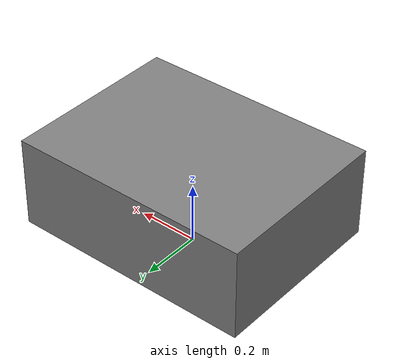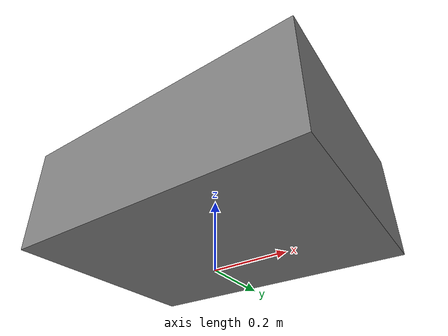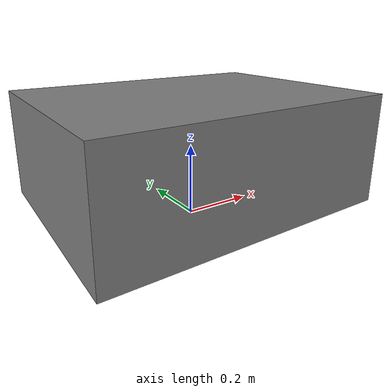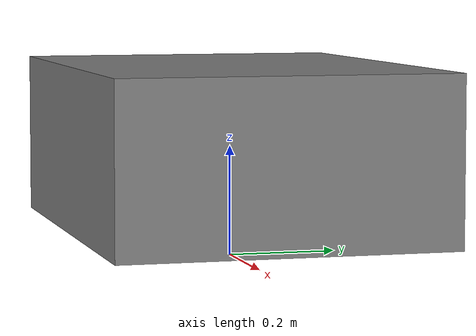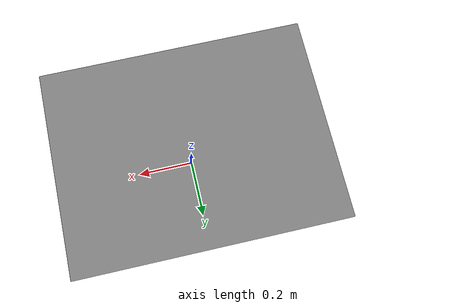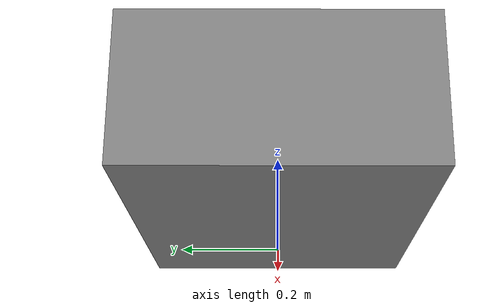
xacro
<?xml version="1.0" encoding="utf-8"?>
<robot name="mvaibot" xmlns:xacro="http://www.ros.org/wiki/xacro">

  <!-- ========== 底盘尺寸参数 ========== -->
  <xacro:property name="base_length" value="0.8" />
  <xacro:property name="base_width"  value="0.6" />
  <xacro:property name="base_height" value="0.3" />
  <!-- base_link 底面离地高度 -->
  <xacro:property name="base_ground_clearance" value="0.05" />

  <!-- ========== 颜色材质 ========== -->
  <xacro:macro name="material_grey">
    <material name="grey">
      <color rgba="0.5 0.5 0.5 1.0" />
    </material>
  </xacro:macro>

  <!-- ========== base_link 宏声明 ========== -->
  <xacro:macro name="base_link_macro" params="length width height mass">

    <!-- base_link (底盘主体) -->
    <link name="base_link">
      <visual>
        <origin xyz="0 0 ${height / 2}" rpy="0 0 0" />
        <geometry>
          <box size="${length} ${width} ${height}" />
        </geometry>
        <xacro:material_grey />
      </visual>

      <collision>
        <origin xyz="0 0 ${height / 2}" rpy="0 0 0" />
        <geometry>
          <box size="${length} ${width} ${height}" />
        </geometry>
      </collision>

      <inertial>
        <origin xyz="0 0 ${height / 2}" rpy="0 0 0" />
        <mass value="${mass}" />
        <inertia ixx="${0.0833 * mass * (width**2 + height**2)}"
                 ixy="0" ixz="0"
                 iyy="${0.0833 * mass * (length**2 + height**2)}"
                 iyz="0"
                 izz="${0.0833 * mass * (length**2 + width**2)}" />
      </inertial>
    </link>

  </xacro:macro>

  <!-- ========== 调用 base_link 宏，传入底盘参数 ========== -->
  <xacro:base_link_macro
    length="${base_length}"
    width="${base_width}"
    height="${base_height}"
    mass="20.0" />

  <!-- ========== base_footprint (地面投影点, 无可视模型) ========== -->
  <link name="base_footprint" />

  <!-- ========== 关节定义（统一维护） ========== -->
  <joint name="base_footprint_joint" type="fixed">
    <parent link="base_footprint" />
    <child  link="base_link" />
    <origin xyz="0 0 ${base_ground_clearance}" rpy="0 0 0" />
  </joint>

</robot>
